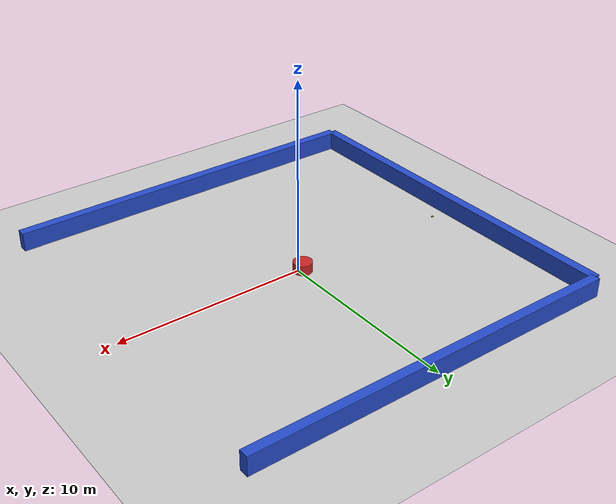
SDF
<sdf version="1.6">
   <world name="default">
      <include>
         <uri>model://ground_plane</uri>
      </include>
      <include>
         <uri>model://sun</uri>
      </include>

    <model name="easylibobs_111">
      <static>1</static>
      <pose frame="">-0.225000 0.075000 0.000000 0.000000 0.000000 0.000000</pose>
      <link name="link">
        <inertial>
          <mass>1</mass>
          <inertia>
            <ixx>0.145833</ixx>
            <ixy>0</ixy>
            <ixz>0</ixz>
            <iyy>0.145833</iyy>
            <iyz>0</iyz>
            <izz>0.125</izz>
          </inertia>
        </inertial>
        <collision name="collision">
           <geometry>
            <cylinder>
                <radius>0.5000</radius>
                 <length> 1 </length>
            </cylinder>
          </geometry>
           <surface>
            <contact>
              <ode />
            </contact>
            <bounce />
            <friction>
              <torsional>
                <ode />
              </torsional>
              <ode />
            </friction>
          </surface>
        </collision>
        <visual name="visual">
           <geometry>
            <cylinder>
                <radius>0.5000</radius>
                 <length> 1 </length>
            </cylinder>
          </geometry>
          <material>
            <script>
              <name>Gazebo/Red</name>
              <uri>file://media/materials/scripts/gazebo.material</uri>
            </script>
          </material>
        </visual>
        <self_collide>0</self_collide>
        <kinematic>0</kinematic>
        <gravity>1</gravity>
      </link>
      <plugin name="easylibobs_111" filename="easylibobs_111.so" />
    </model>

    <model name="easylibobs_4">
      <static>1</static>
      <pose frame="">-0.225000 0.075000 0.000000 0.000000 0.000000 0.000000</pose>
      <link name="link">
        <inertial>
          <mass>1</mass>
          <inertia>
            <ixx>0.145833</ixx>
            <ixy>0</ixy>
            <ixz>0</ixz>
            <iyy>0.145833</iyy>
            <iyz>0</iyz>
            <izz>0.125</izz>
          </inertia>
        </inertial>
        <collision name="collision">
           <geometry>
            <cylinder>
                <radius>0.5000</radius>
                 <length> 1 </length>
            </cylinder>
          </geometry>
           <surface>
            <contact>
              <ode />
            </contact>
            <bounce />
            <friction>
              <torsional>
                <ode />
              </torsional>
              <ode />
            </friction>
          </surface>
        </collision>
        <visual name="visual">
           <geometry>
            <cylinder>
                <radius>0.5000</radius>
                 <length> 1 </length>
            </cylinder>
          </geometry>
          <material>
            <script>
              <name>Gazebo/Red</name>
              <uri>file://media/materials/scripts/gazebo.material</uri>
            </script>
          </material>
        </visual>
        <self_collide>0</self_collide>
        <kinematic>0</kinematic>
        <gravity>1</gravity>
      </link>
      <plugin name="easylibobs_4" filename="easylibobs_4.so" />
    </model>

    <model name="easylibobs_121">
      <static>1</static>
      <pose frame="">-0.225000 0.075000 0.000000 0.000000 0.000000 0.000000</pose>
      <link name="link">
        <inertial>
          <mass>1</mass>
          <inertia>
            <ixx>0.145833</ixx>
            <ixy>0</ixy>
            <ixz>0</ixz>
            <iyy>0.145833</iyy>
            <iyz>0</iyz>
            <izz>0.125</izz>
          </inertia>
        </inertial>
        <collision name="collision">
           <geometry>
            <cylinder>
                <radius>0.5000</radius>
                 <length> 1 </length>
            </cylinder>
          </geometry>
           <surface>
            <contact>
              <ode />
            </contact>
            <bounce />
            <friction>
              <torsional>
                <ode />
              </torsional>
              <ode />
            </friction>
          </surface>
        </collision>
        <visual name="visual">
           <geometry>
            <cylinder>
                <radius>0.5000</radius>
                 <length> 1 </length>
            </cylinder>
          </geometry>
          <material>
            <script>
              <name>Gazebo/Red</name>
              <uri>file://media/materials/scripts/gazebo.material</uri>
            </script>
          </material>
        </visual>
        <self_collide>0</self_collide>
        <kinematic>0</kinematic>
        <gravity>1</gravity>
      </link>
      <plugin name="easylibobs_121" filename="easylibobs_121.so" />
    </model>

    <model name="easylibobs_55">
      <static>1</static>
      <pose frame="">-0.225000 0.075000 0.000000 0.000000 0.000000 0.000000</pose>
      <link name="link">
        <inertial>
          <mass>1</mass>
          <inertia>
            <ixx>0.145833</ixx>
            <ixy>0</ixy>
            <ixz>0</ixz>
            <iyy>0.145833</iyy>
            <iyz>0</iyz>
            <izz>0.125</izz>
          </inertia>
        </inertial>
        <collision name="collision">
           <geometry>
            <cylinder>
                <radius>0.5000</radius>
                 <length> 1 </length>
            </cylinder>
          </geometry>
           <surface>
            <contact>
              <ode />
            </contact>
            <bounce />
            <friction>
              <torsional>
                <ode />
              </torsional>
              <ode />
            </friction>
          </surface>
        </collision>
        <visual name="visual">
           <geometry>
            <cylinder>
                <radius>0.5000</radius>
                 <length> 1 </length>
            </cylinder>
          </geometry>
          <material>
            <script>
              <name>Gazebo/Red</name>
              <uri>file://media/materials/scripts/gazebo.material</uri>
            </script>
          </material>
        </visual>
        <self_collide>0</self_collide>
        <kinematic>0</kinematic>
        <gravity>1</gravity>
      </link>
      <plugin name="easylibobs_55" filename="easylibobs_55.so" />
    </model>

    <model name="easylibobs_168">
      <static>1</static>
      <pose frame="">-0.225000 0.075000 0.000000 0.000000 0.000000 0.000000</pose>
      <link name="link">
        <inertial>
          <mass>1</mass>
          <inertia>
            <ixx>0.145833</ixx>
            <ixy>0</ixy>
            <ixz>0</ixz>
            <iyy>0.145833</iyy>
            <iyz>0</iyz>
            <izz>0.125</izz>
          </inertia>
        </inertial>
        <collision name="collision">
           <geometry>
            <cylinder>
                <radius>0.5000</radius>
                 <length> 1 </length>
            </cylinder>
          </geometry>
           <surface>
            <contact>
              <ode />
            </contact>
            <bounce />
            <friction>
              <torsional>
                <ode />
              </torsional>
              <ode />
            </friction>
          </surface>
        </collision>
        <visual name="visual">
           <geometry>
            <cylinder>
                <radius>0.5000</radius>
                 <length> 1 </length>
            </cylinder>
          </geometry>
          <material>
            <script>
              <name>Gazebo/Red</name>
              <uri>file://media/materials/scripts/gazebo.material</uri>
            </script>
          </material>
        </visual>
        <self_collide>0</self_collide>
        <kinematic>0</kinematic>
        <gravity>1</gravity>
      </link>
      <plugin name="easylibobs_168" filename="easylibobs_168.so" />
    </model>

    <model name="easylibobs_192">
      <static>1</static>
      <pose frame="">-0.225000 0.075000 0.000000 0.000000 0.000000 0.000000</pose>
      <link name="link">
        <inertial>
          <mass>1</mass>
          <inertia>
            <ixx>0.145833</ixx>
            <ixy>0</ixy>
            <ixz>0</ixz>
            <iyy>0.145833</iyy>
            <iyz>0</iyz>
            <izz>0.125</izz>
          </inertia>
        </inertial>
        <collision name="collision">
           <geometry>
            <cylinder>
                <radius>0.5000</radius>
                 <length> 1 </length>
            </cylinder>
          </geometry>
           <surface>
            <contact>
              <ode />
            </contact>
            <bounce />
            <friction>
              <torsional>
                <ode />
              </torsional>
              <ode />
            </friction>
          </surface>
        </collision>
        <visual name="visual">
           <geometry>
            <cylinder>
                <radius>0.5000</radius>
                 <length> 1 </length>
            </cylinder>
          </geometry>
          <material>
            <script>
              <name>Gazebo/Red</name>
              <uri>file://media/materials/scripts/gazebo.material</uri>
            </script>
          </material>
        </visual>
        <self_collide>0</self_collide>
        <kinematic>0</kinematic>
        <gravity>1</gravity>
      </link>
      <plugin name="easylibobs_192" filename="easylibobs_192.so" />
    </model>

    <model name="easylibobs_87">
      <static>1</static>
      <pose frame="">-0.225000 0.075000 0.000000 0.000000 0.000000 0.000000</pose>
      <link name="link">
        <inertial>
          <mass>1</mass>
          <inertia>
            <ixx>0.145833</ixx>
            <ixy>0</ixy>
            <ixz>0</ixz>
            <iyy>0.145833</iyy>
            <iyz>0</iyz>
            <izz>0.125</izz>
          </inertia>
        </inertial>
        <collision name="collision">
           <geometry>
            <cylinder>
                <radius>0.5000</radius>
                 <length> 1 </length>
            </cylinder>
          </geometry>
           <surface>
            <contact>
              <ode />
            </contact>
            <bounce />
            <friction>
              <torsional>
                <ode />
              </torsional>
              <ode />
            </friction>
          </surface>
        </collision>
        <visual name="visual">
           <geometry>
            <cylinder>
                <radius>0.5000</radius>
                 <length> 1 </length>
            </cylinder>
          </geometry>
          <material>
            <script>
              <name>Gazebo/Red</name>
              <uri>file://media/materials/scripts/gazebo.material</uri>
            </script>
          </material>
        </visual>
        <self_collide>0</self_collide>
        <kinematic>0</kinematic>
        <gravity>1</gravity>
      </link>
      <plugin name="easylibobs_87" filename="easylibobs_87.so" />
    </model>

    <model name="easylibobs_80">
      <static>1</static>
      <pose frame="">-0.225000 0.075000 0.000000 0.000000 0.000000 0.000000</pose>
      <link name="link">
        <inertial>
          <mass>1</mass>
          <inertia>
            <ixx>0.145833</ixx>
            <ixy>0</ixy>
            <ixz>0</ixz>
            <iyy>0.145833</iyy>
            <iyz>0</iyz>
            <izz>0.125</izz>
          </inertia>
        </inertial>
        <collision name="collision">
           <geometry>
            <cylinder>
                <radius>0.5000</radius>
                 <length> 1 </length>
            </cylinder>
          </geometry>
           <surface>
            <contact>
              <ode />
            </contact>
            <bounce />
            <friction>
              <torsional>
                <ode />
              </torsional>
              <ode />
            </friction>
          </surface>
        </collision>
        <visual name="visual">
           <geometry>
            <cylinder>
                <radius>0.5000</radius>
                 <length> 1 </length>
            </cylinder>
          </geometry>
          <material>
            <script>
              <name>Gazebo/Red</name>
              <uri>file://media/materials/scripts/gazebo.material</uri>
            </script>
          </material>
        </visual>
        <self_collide>0</self_collide>
        <kinematic>0</kinematic>
        <gravity>1</gravity>
      </link>
      <plugin name="easylibobs_80" filename="easylibobs_80.so" />
    </model>

    <model name="easylibobs_99">
      <static>1</static>
      <pose frame="">-0.225000 0.075000 0.000000 0.000000 0.000000 0.000000</pose>
      <link name="link">
        <inertial>
          <mass>1</mass>
          <inertia>
            <ixx>0.145833</ixx>
            <ixy>0</ixy>
            <ixz>0</ixz>
            <iyy>0.145833</iyy>
            <iyz>0</iyz>
            <izz>0.125</izz>
          </inertia>
        </inertial>
        <collision name="collision">
           <geometry>
            <cylinder>
                <radius>0.5000</radius>
                 <length> 1 </length>
            </cylinder>
          </geometry>
           <surface>
            <contact>
              <ode />
            </contact>
            <bounce />
            <friction>
              <torsional>
                <ode />
              </torsional>
              <ode />
            </friction>
          </surface>
        </collision>
        <visual name="visual">
           <geometry>
            <cylinder>
                <radius>0.5000</radius>
                 <length> 1 </length>
            </cylinder>
          </geometry>
          <material>
            <script>
              <name>Gazebo/Red</name>
              <uri>file://media/materials/scripts/gazebo.material</uri>
            </script>
          </material>
        </visual>
        <self_collide>0</self_collide>
        <kinematic>0</kinematic>
        <gravity>1</gravity>
      </link>
      <plugin name="easylibobs_99" filename="easylibobs_99.so" />
    </model>

    <model name="easylibobs_58">
      <static>1</static>
      <pose frame="">-0.225000 0.075000 0.000000 0.000000 0.000000 0.000000</pose>
      <link name="link">
        <inertial>
          <mass>1</mass>
          <inertia>
            <ixx>0.145833</ixx>
            <ixy>0</ixy>
            <ixz>0</ixz>
            <iyy>0.145833</iyy>
            <iyz>0</iyz>
            <izz>0.125</izz>
          </inertia>
        </inertial>
        <collision name="collision">
           <geometry>
            <cylinder>
                <radius>0.5000</radius>
                 <length> 1 </length>
            </cylinder>
          </geometry>
           <surface>
            <contact>
              <ode />
            </contact>
            <bounce />
            <friction>
              <torsional>
                <ode />
              </torsional>
              <ode />
            </friction>
          </surface>
        </collision>
        <visual name="visual">
           <geometry>
            <cylinder>
                <radius>0.5000</radius>
                 <length> 1 </length>
            </cylinder>
          </geometry>
          <material>
            <script>
              <name>Gazebo/Red</name>
              <uri>file://media/materials/scripts/gazebo.material</uri>
            </script>
          </material>
        </visual>
        <self_collide>0</self_collide>
        <kinematic>0</kinematic>
        <gravity>1</gravity>
      </link>
      <plugin name="easylibobs_58" filename="easylibobs_58.so" />
    </model>

      <model name="back_wall">
      <static>1</static>\   <pose frame="">-10 0 .5 0 0 0</pose>        <link name="box_link">

	<collision name="collision">
            <geometry>
              <box>
                <size>.5 20 1</size>
              </box>
            </geometry>
           <surface>
            <contact>
              <ode />
            </contact>
            <bounce />
            <friction>
              <torsional>
                <ode />
              </torsional>
              <ode />
            </friction>
          </surface>
        </collision>

          <visual name="visual">
            <geometry>
              <box>
                <size>.5 20 1</size>
              </box>
            </geometry>
          <material>
                 <script>
                     <name>Gazebo/Blue</name>
                         <uri>file://media/materials/scripts/gazebo.material</uri>
                         </script>
                     </material>
          </visual>
        </link>
      </model>
      <model name="top_wall">
      <static>1</static>
       <pose frame="">0 10 .5 0 0 0</pose>        <link name="box_link">

	<collision name="collision">
           <geometry>
              <box>
                <size>20 .5 1</size>
              </box>
            </geometry>
           <surface>
            <contact>
              <ode />
            </contact>
            <bounce />
            <friction>
              <torsional>
                <ode />
              </torsional>
              <ode />
            </friction>
          </surface>
        </collision>
          <visual name="visual">
            <geometry>
              <box>
                <size>20 .5 1</size>
              </box>
            </geometry>
          <material>
                 <script>
                     <name>Gazebo/Blue</name>
                         <uri>file://media/materials/scripts/gazebo.material</uri>
                         </script>
                     </material>
          </visual>
        </link>
      </model>
      <model name="bottom_wall">
      <static>1</static>
       <pose frame="">0 -10 .5 0 0 0</pose>        <link name="box_link">
	<collision name="collision">
            <geometry>
              <box>
                <size>20 .5 1</size>
              </box>
            </geometry>
           <surface>
            <contact>
              <ode />
            </contact>
            <bounce />
            <friction>
              <torsional>
                <ode />
              </torsional>
              <ode />
            </friction>
          </surface>
        </collision>
          <visual name="visual">
            <geometry>
              <box>
                <size>20 .5 1</size>
              </box>
            </geometry>
          <material>
                 <script>
                     <name>Gazebo/Blue</name>
                         <uri>file://media/materials/scripts/gazebo.material</uri>
                         </script>
                     </material>
          </visual>
        </link>
      </model>
   <model name="goal"><static>1</static><pose frame="">-9.00000 0.000000 0.000000 0.000000 0.000000 0.000000</pose><link name="link"><inertial><mass>1</mass><inertia><ixx>0.145833</ixx><ixy>0</ixy><ixz>0</ixz><iyy>0.145833</iyy><iyz>0</iyz><izz>0.125</izz></inertia></inertial><collision name="collision"><geometry><cylinder><radius>0.075000</radius><length>1</length></cylinder></geometry><max_contacts>10</max_contacts><surface><contact><ode /></contact><bounce /><friction><torsional><ode /></torsional><ode /></friction></surface></collision><visual name="visual"><geometry><cylinder><radius>0.075000</radius><length>0.001</length></cylinder></geometry><material><ambient>0 1 0 1</ambient><diffuse>0.4 0.4 0.1 1</diffuse></material><material><script><name>Gazebo/Grey</name><uri>file://media/materials/scripts/gazebo.material</uri></script></material></visual><self_collide>0</self_collide><kinematic>0</kinematic><gravity>0</gravity></link></model></world>
</sdf>
